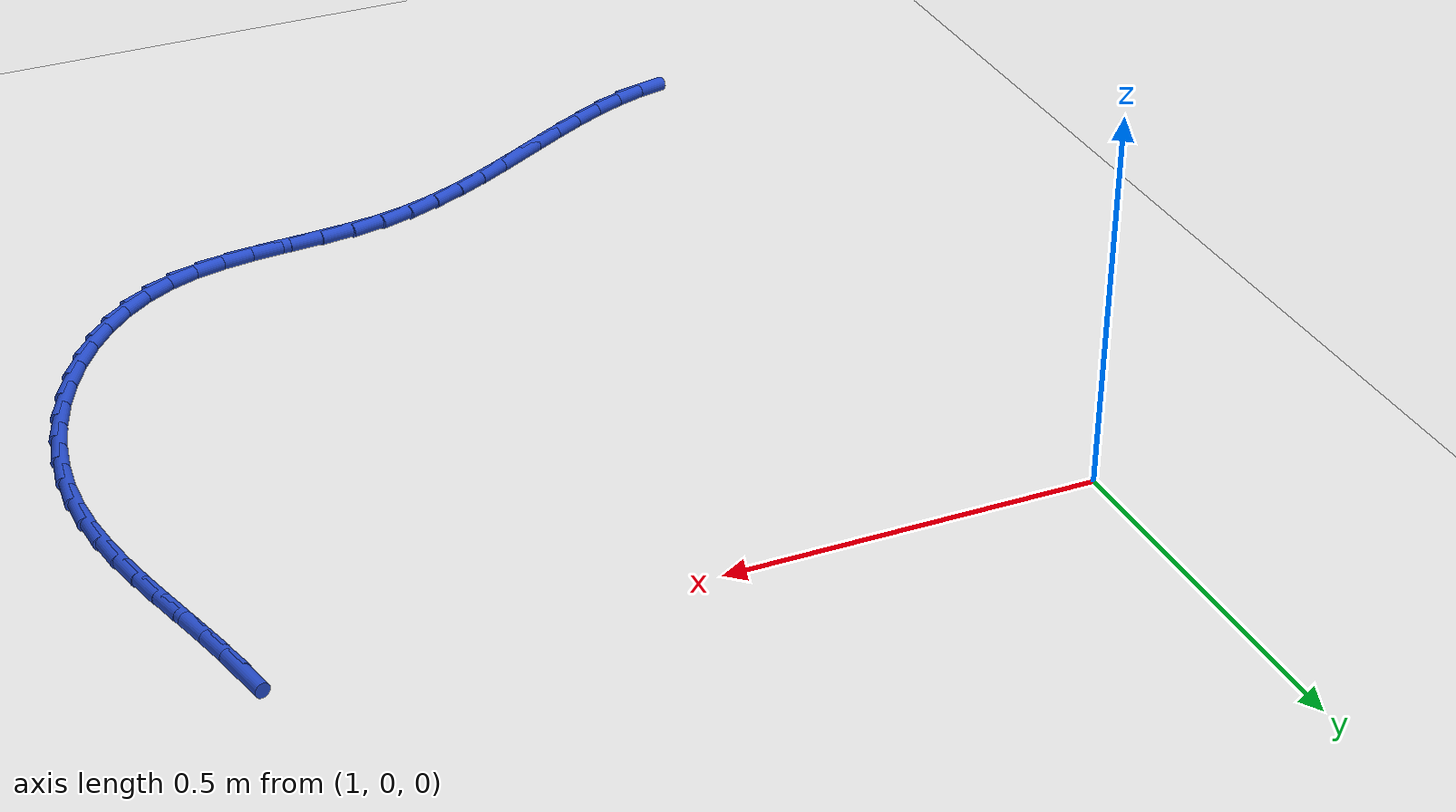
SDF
<sdf version="1.6">
 <world name="default">
  <model name="ground_plane">
   <static>1</static>
   <link name="link">
    <collision name="collision">
     <geometry><plane><normal>0 0 1</normal><size>100 100</size></plane></geometry>
     <surface><friction><ode><mu>100</mu><mu2>50</mu2></ode></friction></surface>
    </collision>
    <visual name="visual">
     <cast_shadows>0</cast_shadows>
     <geometry><plane><normal>0 0 1</normal><size>100 100</size></plane></geometry>
     <material>
      <script><uri>file://media/materials/scripts/gazebo.material</uri><name>Gazebo/WhiteGlow</name></script>
     </material>
    </visual>
   </link>
  </model>
  <model name="line">
   <link name="link_81">
    <pose>2.072898724538535 -0.02992340047748541 0.01 0 1.57 -1.3554700522691958</pose>
    <collision name="collision">
     <geometry><cylinder><radius>0.01</radius><length>0.08</length></cylinder></geometry>
    </collision>
    <visual name="visual">
     <material>
      <script><name>Gazebo/Blue</name><uri>file://media/materials/scripts/gazebo.material</uri></script>
     </material>
     <geometry><cylinder><radius>0.01</radius><length>0.08</length></cylinder></geometry>
    </visual>
   </link>
   <link name="link_82">
    <pose>2.0823933790944635 -0.07333407024838666 0.01 0 1.57 -1.3215289644622596</pose>
    <collision name="collision">
     <geometry><cylinder><radius>0.01</radius><length>0.08</length></cylinder></geometry>
    </collision>
    <visual name="visual">
     <material>
      <script><name>Gazebo/Blue</name><uri>file://media/materials/scripts/gazebo.material</uri></script>
     </material>
     <geometry><cylinder><radius>0.01</radius><length>0.08</length></cylinder></geometry>
    </visual>
   </link>
   <link name="link_83">
    <pose>2.0934297230564742 -0.11668837539067779 0.01 0 1.57 -1.3031714827749232</pose>
    <collision name="collision">
     <geometry><cylinder><radius>0.01</radius><length>0.08</length></cylinder></geometry>
    </collision>
    <visual name="visual">
     <material>
      <script><name>Gazebo/Blue</name><uri>file://media/materials/scripts/gazebo.material</uri></script>
     </material>
     <geometry><cylinder><radius>0.01</radius><length>0.08</length></cylinder></geometry>
    </visual>
   </link>
   <link name="link_84">
    <pose>2.1053332410783367 -0.16009975221186157 0.01 0 1.57 -1.3000604259586876</pose>
    <collision name="collision">
     <geometry><cylinder><radius>0.01</radius><length>0.08</length></cylinder></geometry>
    </collision>
    <visual name="visual">
     <material>
      <script><name>Gazebo/Blue</name><uri>file://media/materials/scripts/gazebo.material</uri></script>
     </material>
     <geometry><cylinder><radius>0.01</radius><length>0.08</length></cylinder></geometry>
    </visual>
   </link>
   <link name="link_85">
    <pose>2.117429417813817 -0.20368163701944003 0.01 0 1.57 -1.311966272216978</pose>
    <collision name="collision">
     <geometry><cylinder><radius>0.01</radius><length>0.08</length></cylinder></geometry>
    </collision>
    <visual name="visual">
     <material>
      <script><name>Gazebo/Blue</name><uri>file://media/materials/scripts/gazebo.material</uri></script>
     </material>
     <geometry><cylinder><radius>0.01</radius><length>0.08</length></cylinder></geometry>
    </visual>
   </link>
   <link name="link_86">
    <pose>2.129043737916684 -0.24754746612091533 0.01 0 1.57 -1.338783749453684</pose>
    <collision name="collision">
     <geometry><cylinder><radius>0.01</radius><length>0.08</length></cylinder></geometry>
    </collision>
    <visual name="visual">
     <material>
      <script><name>Gazebo/Blue</name><uri>file://media/materials/scripts/gazebo.material</uri></script>
     </material>
     <geometry><cylinder><radius>0.01</radius><length>0.08</length></cylinder></geometry>
    </visual>
   </link>
   <link name="link_87">
    <pose>2.139501686040706 -0.2918106758237903 0.01 0 1.57 -1.3804490046196827</pose>
    <collision name="collision">
     <geometry><cylinder><radius>0.01</radius><length>0.08</length></cylinder></geometry>
    </collision>
    <visual name="visual">
     <material>
      <script><name>Gazebo/Blue</name><uri>file://media/materials/scripts/gazebo.material</uri></script>
     </material>
     <geometry><cylinder><radius>0.01</radius><length>0.08</length></cylinder></geometry>
    </visual>
   </link>
   <link name="link_88">
    <pose>2.1481287468396495 -0.33658470243556526 0.01 0 1.57 -1.436761405109443</pose>
    <collision name="collision">
     <geometry><cylinder><radius>0.01</radius><length>0.08</length></cylinder></geometry>
    </collision>
    <visual name="visual">
     <material>
      <script><name>Gazebo/Blue</name><uri>file://media/materials/scripts/gazebo.material</uri></script>
     </material>
     <geometry><cylinder><radius>0.01</radius><length>0.08</length></cylinder></geometry>
    </visual>
   </link>
   <link name="link_89">
    <pose>2.1542504049672835 -0.38198298226374316 0.01 0 1.57 -1.5071201288234062</pose>
    <collision name="collision">
     <geometry><cylinder><radius>0.01</radius><length>0.08</length></cylinder></geometry>
    </collision>
    <visual name="visual">
     <material>
      <script><name>Gazebo/Blue</name><uri>file://media/materials/scripts/gazebo.material</uri></script>
     </material>
     <geometry><cylinder><radius>0.01</radius><length>0.08</length></cylinder></geometry>
    </visual>
   </link>
   <link name="link_90">
    <pose>2.1571921450773757 -0.4281189516158262 0.01 0 1.57 1.5514116526347155</pose>
    <collision name="collision">
     <geometry><cylinder><radius>0.01</radius><length>0.08</length></cylinder></geometry>
    </collision>
    <visual name="visual">
     <material>
      <script><name>Gazebo/Blue</name><uri>file://media/materials/scripts/gazebo.material</uri></script>
     </material>
     <geometry><cylinder><radius>0.01</radius><length>0.08</length></cylinder></geometry>
    </visual>
   </link>
   <link name="link_91">
    <pose>2.156281231104387 -0.4751045169080008 0.01 0 1.57 1.462745858655776</pose>
    <collision name="collision">
     <geometry><cylinder><radius>0.01</radius><length>0.08</length></cylinder></geometry>
    </collision>
    <visual name="visual">
     <material>
      <script><name>Gazebo/Blue</name><uri>file://media/materials/scripts/gazebo.material</uri></script>
     </material>
     <geometry><cylinder><radius>0.01</radius><length>0.08</length></cylinder></geometry>
    </visual>
   </link>
   <link name="link_92">
    <pose>2.1511044802826147 -0.5228284110340841 0.01 0 1.57 1.378488112872327</pose>
    <collision name="collision">
     <geometry><cylinder><radius>0.01</radius><length>0.08</length></cylinder></geometry>
    </collision>
    <visual name="visual">
     <material>
      <script><name>Gazebo/Blue</name><uri>file://media/materials/scripts/gazebo.material</uri></script>
     </material>
     <geometry><cylinder><radius>0.01</radius><length>0.08</length></cylinder></geometry>
    </visual>
   </link>
   <link name="link_93">
    <pose>2.1417785568843715 -0.5707237848172222 0.01 0 1.57 1.297604707513465</pose>
    <collision name="collision">
     <geometry><cylinder><radius>0.01</radius><length>0.08</length></cylinder></geometry>
    </collision>
    <visual name="visual">
     <material>
      <script><name>Gazebo/Blue</name><uri>file://media/materials/scripts/gazebo.material</uri></script>
     </material>
     <geometry><cylinder><radius>0.01</radius><length>0.08</length></cylinder></geometry>
    </visual>
   </link>
   <link name="link_94">
    <pose>2.128484756821774 -0.6181682164073512 0.01 0 1.57 1.2178761332899557</pose>
    <collision name="collision">
     <geometry><cylinder><radius>0.01</radius><length>0.08</length></cylinder></geometry>
    </collision>
    <visual name="visual">
     <material>
      <script><name>Gazebo/Blue</name><uri>file://media/materials/scripts/gazebo.material</uri></script>
     </material>
     <geometry><cylinder><radius>0.01</radius><length>0.08</length></cylinder></geometry>
    </visual>
   </link>
   <link name="link_95">
    <pose>2.1114043760069445 -0.664539283954407 0.01 0 1.57 1.1371657222524811</pose>
    <collision name="collision">
     <geometry><cylinder><radius>0.01</radius><length>0.08</length></cylinder></geometry>
    </collision>
    <visual name="visual">
     <material>
      <script><name>Gazebo/Blue</name><uri>file://media/materials/scripts/gazebo.material</uri></script>
     </material>
     <geometry><cylinder><radius>0.01</radius><length>0.08</length></cylinder></geometry>
    </visual>
   </link>
   <link name="link_96">
    <pose>2.0907187103520006 -0.7092145656083256 0.01 0 1.57 1.0533316806462218</pose>
    <collision name="collision">
     <geometry><cylinder><radius>0.01</radius><length>0.08</length></cylinder></geometry>
    </collision>
    <visual name="visual">
     <material>
      <script><name>Gazebo/Blue</name><uri>file://media/materials/scripts/gazebo.material</uri></script>
     </material>
     <geometry><cylinder><radius>0.01</radius><length>0.08</length></cylinder></geometry>
    </visual>
   </link>
   <link name="link_97">
    <pose>2.0666090557690637 -0.7515716395190415 0.01 0 1.57 0.9641541992299898</pose>
    <collision name="collision">
     <geometry><cylinder><radius>0.01</radius><length>0.08</length></cylinder></geometry>
    </collision>
    <visual name="visual">
     <material>
      <script><name>Gazebo/Blue</name><uri>file://media/materials/scripts/gazebo.material</uri></script>
     </material>
     <geometry><cylinder><radius>0.01</radius><length>0.08</length></cylinder></geometry>
    </visual>
   </link>
   <link name="link_98">
    <pose>2.039256708170253 -0.7909880838364908 0.01 0 1.57 0.8673011952833055</pose>
    <collision name="collision">
     <geometry><cylinder><radius>0.01</radius><length>0.08</length></cylinder></geometry>
    </collision>
    <visual name="visual">
     <material>
      <script><name>Gazebo/Blue</name><uri>file://media/materials/scripts/gazebo.material</uri></script>
     </material>
     <geometry><cylinder><radius>0.01</radius><length>0.08</length></cylinder></geometry>
    </visual>
   </link>
   <link name="link_99">
    <pose>2.0088429634676888 -0.826841476710609 0.01 0 1.57 0.7603744142906139</pose>
    <collision name="collision">
     <geometry><cylinder><radius>0.01</radius><length>0.08</length></cylinder></geometry>
    </collision>
    <visual name="visual">
     <material>
      <script><name>Gazebo/Blue</name><uri>file://media/materials/scripts/gazebo.material</uri></script>
     </material>
     <geometry><cylinder><radius>0.01</radius><length>0.08</length></cylinder></geometry>
    </visual>
   </link>
   <link name="link_100">
    <pose>1.9755491175734898 -0.858509396291332 0.01 0 1.57 0.641105859986817</pose>
    <collision name="collision">
     <geometry><cylinder><radius>0.01</radius><length>0.08</length></cylinder></geometry>
    </collision>
    <visual name="visual">
     <material>
      <script><name>Gazebo/Blue</name><uri>file://media/materials/scripts/gazebo.material</uri></script>
     </material>
     <geometry><cylinder><radius>0.01</radius><length>0.08</length></cylinder></geometry>
    </visual>
   </link>
   <link name="link_101">
    <pose>1.9395564663997764 -0.8853694207285957 0.01 0 1.57 0.5077961820254396</pose>
    <collision name="collision">
     <geometry><cylinder><radius>0.01</radius><length>0.08</length></cylinder></geometry>
    </collision>
    <visual name="visual">
     <material>
      <script><name>Gazebo/Blue</name><uri>file://media/materials/scripts/gazebo.material</uri></script>
     </material>
     <geometry><cylinder><radius>0.01</radius><length>0.08</length></cylinder></geometry>
    </visual>
   </link>
   <link name="link_102">
    <pose>1.9010463058586686 -0.9067991281723345 0.01 0 1.57 0.3612904338989572</pose>
    <collision name="collision">
     <geometry><cylinder><radius>0.01</radius><length>0.08</length></cylinder></geometry>
    </collision>
    <visual name="visual">
     <material>
      <script><name>Gazebo/Blue</name><uri>file://media/materials/scripts/gazebo.material</uri></script>
     </material>
     <geometry><cylinder><radius>0.01</radius><length>0.08</length></cylinder></geometry>
    </visual>
   </link>
   <link name="link_103">
    <pose>1.860207625884072 -0.9222311190954278 0.01 0 1.57 0.22856920761643354</pose>
    <collision name="collision">
     <geometry><cylinder><radius>0.01</radius><length>0.08</length></cylinder></geometry>
    </collision>
    <visual name="visual">
     <material>
      <script><name>Gazebo/Blue</name><uri>file://media/materials/scripts/gazebo.material</uri></script>
     </material>
     <geometry><cylinder><radius>0.01</radius><length>0.08</length></cylinder></geometry>
    </visual>
   </link>
   <link name="link_104">
    <pose>1.8173826333482253 -0.932193695555096 0.01 0 1.57 0.13521002606710059</pose>
    <collision name="collision">
     <geometry><cylinder><radius>0.01</radius><length>0.08</length></cylinder></geometry>
    </collision>
    <visual name="visual">
     <material>
      <script><name>Gazebo/Blue</name><uri>file://media/materials/scripts/gazebo.material</uri></script>
     </material>
     <geometry><cylinder><radius>0.01</radius><length>0.08</length></cylinder></geometry>
    </visual>
   </link>
   <link name="link_105">
    <pose>1.7730546172353137 -0.938224081306568 0.01 0 1.57 0.08083026265986638</pose>
    <collision name="collision">
     <geometry><cylinder><radius>0.01</radius><length>0.08</length></cylinder></geometry>
    </collision>
    <visual name="visual">
     <material>
      <script><name>Gazebo/Blue</name><uri>file://media/materials/scripts/gazebo.material</uri></script>
     </material>
     <geometry><cylinder><radius>0.01</radius><length>0.08</length></cylinder></geometry>
    </visual>
   </link>
   <link name="link_106">
    <pose>1.727712128405027 -0.9418971293997676 0.01 0 1.57 0.06293538534193323</pose>
    <collision name="collision">
     <geometry><cylinder><radius>0.01</radius><length>0.08</length></cylinder></geometry>
    </collision>
    <visual name="visual">
     <material>
      <script><name>Gazebo/Blue</name><uri>file://media/materials/scripts/gazebo.material</uri></script>
     </material>
     <geometry><cylinder><radius>0.01</radius><length>0.08</length></cylinder></geometry>
    </visual>
   </link>
   <link name="link_107">
    <pose>1.6818437177170553 -0.9447876928846167 0.01 0 1.57 0.08005659387332804</pose>
    <collision name="collision">
     <geometry><cylinder><radius>0.01</radius><length>0.08</length></cylinder></geometry>
    </collision>
    <visual name="visual">
     <material>
      <script><name>Gazebo/Blue</name><uri>file://media/materials/scripts/gazebo.material</uri></script>
     </material>
     <geometry><cylinder><radius>0.01</radius><length>0.08</length></cylinder></geometry>
    </visual>
   </link>
   <link name="link_108">
    <pose>1.6359379360310873 -0.9484706248110392 0.01 0 1.57 0.13232542189829571</pose>
    <collision name="collision">
     <geometry><cylinder><radius>0.01</radius><length>0.08</length></cylinder></geometry>
    </collision>
    <visual name="visual">
     <material>
      <script><name>Gazebo/Blue</name><uri>file://media/materials/scripts/gazebo.material</uri></script>
     </material>
     <geometry><cylinder><radius>0.01</radius><length>0.08</length></cylinder></geometry>
    </visual>
   </link>
   <link name="link_109">
    <pose>1.5904833342068125 -0.9545207782289576 0.01 0 1.57 0.2193051926901997</pose>
    <collision name="collision">
     <geometry><cylinder><radius>0.01</radius><length>0.08</length></cylinder></geometry>
    </collision>
    <visual name="visual">
     <material>
      <script><name>Gazebo/Blue</name><uri>file://media/materials/scripts/gazebo.material</uri></script>
     </material>
     <geometry><cylinder><radius>0.01</radius><length>0.08</length></cylinder></geometry>
    </visual>
   </link>
   <link name="link_110">
    <pose>1.5459503160157235 -0.9644467419026516 0.01 0 1.57 0.31388730090807027</pose>
    <collision name="collision">
     <geometry><cylinder><radius>0.01</radius><length>0.08</length></cylinder></geometry>
    </collision>
    <visual name="visual">
     <material>
      <script><name>Gazebo/Blue</name><uri>file://media/materials/scripts/gazebo.material</uri></script>
     </material>
     <geometry><cylinder><radius>0.01</radius><length>0.08</length></cylinder></geometry>
    </visual>
   </link>
   <link name="link_111">
    <pose>1.5024808345683134 -0.9785577635128728 0.01 0 1.57 0.39145689545919893</pose>
    <collision name="collision">
     <geometry><cylinder><radius>0.01</radius><length>0.08</length></cylinder></geometry>
    </collision>
    <visual name="visual">
     <material>
      <script><name>Gazebo/Blue</name><uri>file://media/materials/scripts/gazebo.material</uri></script>
     </material>
     <geometry><cylinder><radius>0.01</radius><length>0.08</length></cylinder></geometry>
    </visual>
   </link>
   <link name="link_112">
    <pose>1.4599313096579465 -0.9961204627946382 0.01 0 1.57 0.4512206976969424</pose>
    <collision name="collision">
     <geometry><cylinder><radius>0.01</radius><length>0.08</length></cylinder></geometry>
    </collision>
    <visual name="visual">
     <material>
      <script><name>Gazebo/Blue</name><uri>file://media/materials/scripts/gazebo.material</uri></script>
     </material>
     <geometry><cylinder><radius>0.01</radius><length>0.08</length></cylinder></geometry>
    </visual>
   </link>
   <link name="link_113">
    <pose>1.4181486502524188 -1.0163667306022157 0.01 0 1.57 0.49382585696412484</pose>
    <collision name="collision">
     <geometry><cylinder><radius>0.01</radius><length>0.08</length></cylinder></geometry>
    </collision>
    <visual name="visual">
     <material>
      <script><name>Gazebo/Blue</name><uri>file://media/materials/scripts/gazebo.material</uri></script>
     </material>
     <geometry><cylinder><radius>0.01</radius><length>0.08</length></cylinder></geometry>
    </visual>
   </link>
   <link name="link_114">
    <pose>1.3769797653195275 -1.038528457789873 0.01 0 1.57 0.5200206287672432</pose>
    <collision name="collision">
     <geometry><cylinder><radius>0.01</radius><length>0.08</length></cylinder></geometry>
    </collision>
    <visual name="visual">
     <material>
      <script><name>Gazebo/Blue</name><uri>file://media/materials/scripts/gazebo.material</uri></script>
     </material>
     <geometry><cylinder><radius>0.01</radius><length>0.08</length></cylinder></geometry>
    </visual>
   </link>
   <link name="link_115">
    <pose>1.3362715638270708 -1.0618375352118792 0.01 0 1.57 0.5303116125449988</pose>
    <collision name="collision">
     <geometry><cylinder><radius>0.01</radius><length>0.08</length></cylinder></geometry>
    </collision>
    <visual name="visual">
     <material>
      <script><name>Gazebo/Blue</name><uri>file://media/materials/scripts/gazebo.material</uri></script>
     </material>
     <geometry><cylinder><radius>0.01</radius><length>0.08</length></cylinder></geometry>
    </visual>
   </link>
   <link name="link_116">
    <pose>1.2958709547428455 -1.0855258537225025 0.01 0 1.57 0.524778507505735</pose>
    <collision name="collision">
     <geometry><cylinder><radius>0.01</radius><length>0.08</length></cylinder></geometry>
    </collision>
    <visual name="visual">
     <material>
      <script><name>Gazebo/Blue</name><uri>file://media/materials/scripts/gazebo.material</uri></script>
     </material>
     <geometry><cylinder><radius>0.01</radius><length>0.08</length></cylinder></geometry>
    </visual>
   </link>
   <link name="link_117">
    <pose>1.25562484703465 -1.10882530417601 0.01 0 1.57 0.5029937115005417</pose>
    <collision name="collision">
     <geometry><cylinder><radius>0.01</radius><length>0.08</length></cylinder></geometry>
    </collision>
    <visual name="visual">
     <material>
      <script><name>Gazebo/Blue</name><uri>file://media/materials/scripts/gazebo.material</uri></script>
     </material>
     <geometry><cylinder><radius>0.01</radius><length>0.08</length></cylinder></geometry>
    </visual>
   </link>
   <link name="link_118">
    <pose>1.2153801496702816 -1.1309677774266707 0.01 0 1.57 0.4640277267634982</pose>
    <collision name="collision">
     <geometry><cylinder><radius>0.01</radius><length>0.08</length></cylinder></geometry>
    </collision>
    <visual name="visual">
     <material>
      <script><name>Gazebo/Blue</name><uri>file://media/materials/scripts/gazebo.material</uri></script>
     </material>
     <geometry><cylinder><radius>0.01</radius><length>0.08</length></cylinder></geometry>
    </visual>
   </link>
   <link name="link_119">
    <pose>1.1749837716175373 -1.151185164328752 0.01 0 1.57 0.4065685936811311</pose>
    <collision name="collision">
     <geometry><cylinder><radius>0.01</radius><length>0.08</length></cylinder></geometry>
    </collision>
    <visual name="visual">
     <material>
      <script><name>Gazebo/Blue</name><uri>file://media/materials/scripts/gazebo.material</uri></script>
     </material>
     <geometry><cylinder><radius>0.01</radius><length>0.08</length></cylinder></geometry>
    </visual>
   </link>
   <link name="link_120">
    <pose>1.1342826218442152 -1.1687093557365227 0.01 0 1.57 0.3292365883452826</pose>
    <collision name="collision">
     <geometry><cylinder><radius>0.01</radius><length>0.08</length></cylinder></geometry>
    </collision>
    <visual name="visual">
     <material>
      <script><name>Gazebo/Blue</name><uri>file://media/materials/scripts/gazebo.material</uri></script>
     </material>
     <geometry><cylinder><radius>0.01</radius><length>0.08</length></cylinder></geometry>
    </visual>
   </link>
   <link name="link_121">
    <pose>1.093123609318112 -1.182772242504251 0.01 0 1.57 0.23120965928774717</pose>
    <collision name="collision">
     <geometry><cylinder><radius>0.01</radius><length>0.08</length></cylinder></geometry>
    </collision>
    <visual name="visual">
     <material>
      <script><name>Gazebo/Blue</name><uri>file://media/materials/scripts/gazebo.material</uri></script>
     </material>
     <geometry><cylinder><radius>0.01</radius><length>0.08</length></cylinder></geometry>
    </visual>
   </link>
  </model>
 </world>
</sdf>
